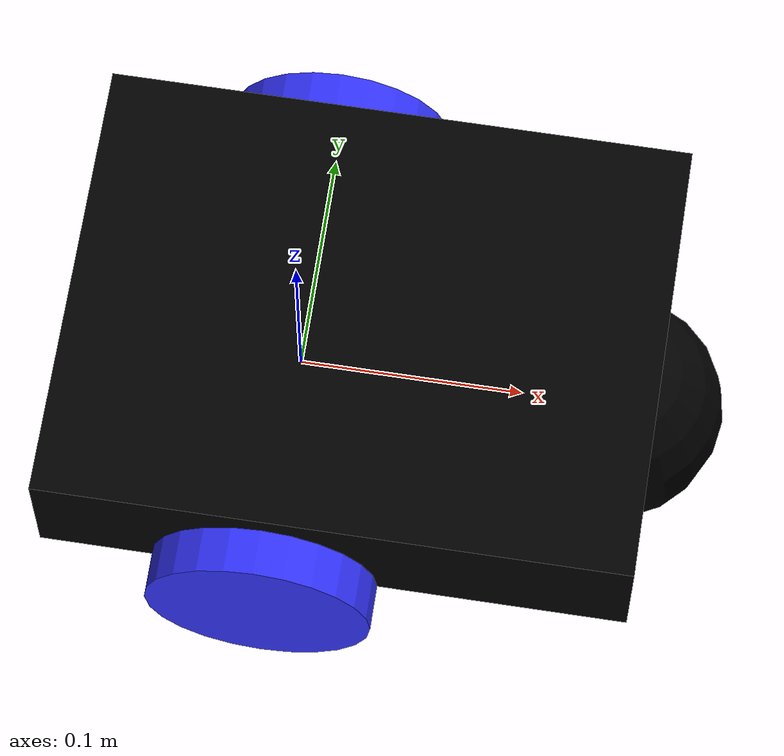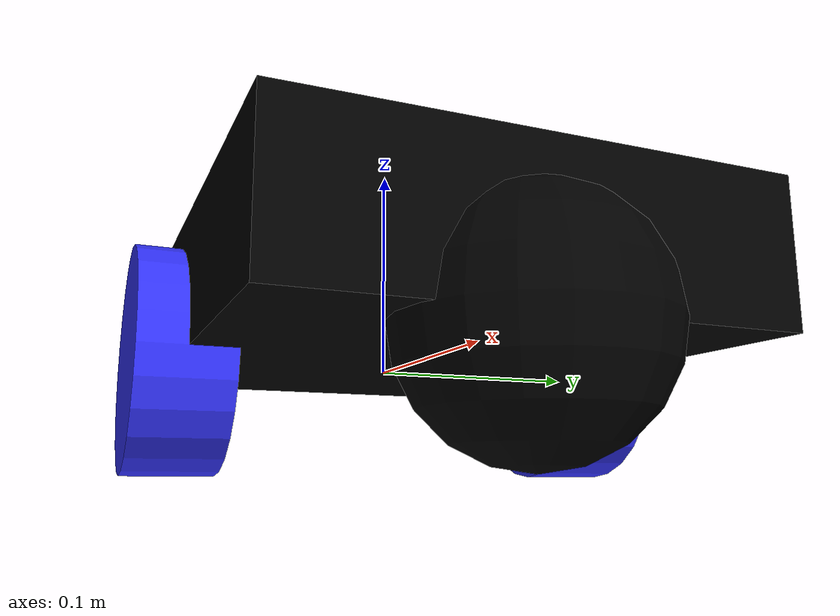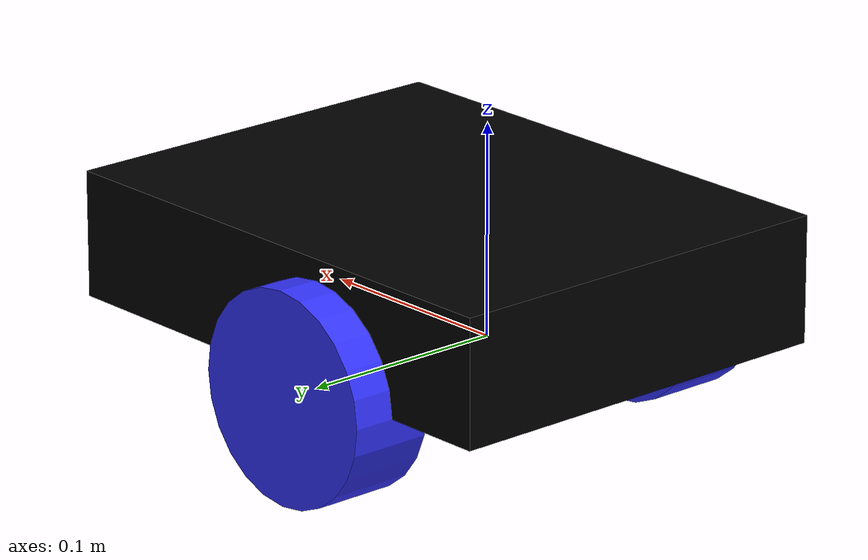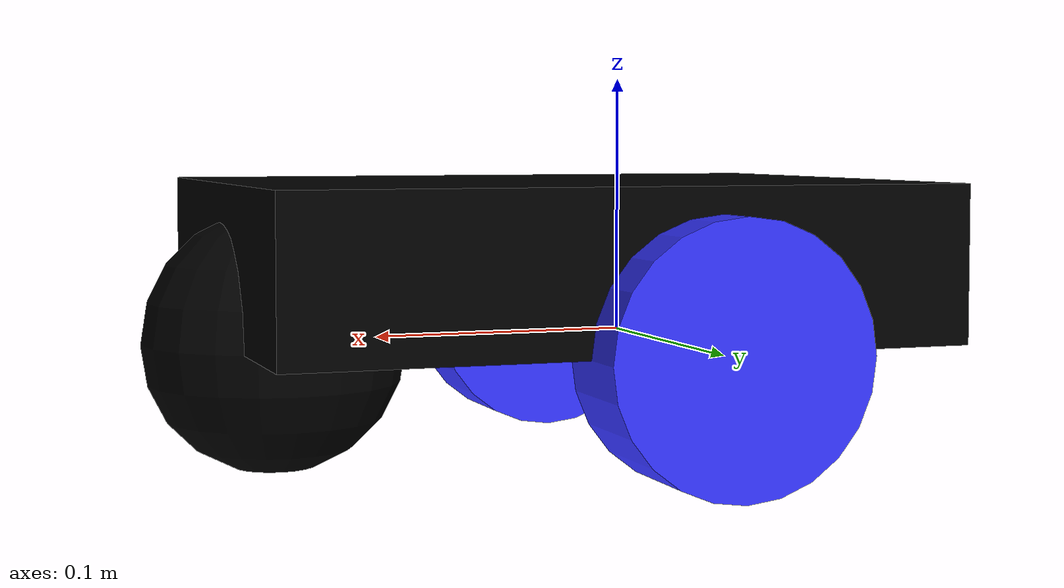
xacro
<?xml version="1.0"?>
<robot xmlns:xacro="http://www.ros.org/wiki/xacro">

    <xacro:include filename="inertial_macros.xacro"/>

    <material name="white">
        <color rgba="1 1 1 1"/>
    </material>

    <material name="orange">
        <color rgba="1 0.3 0.1 1" />
    </material>

    <material name="blue">
        <color rgba="0.2 0.2 1 1" />
    </material>

    <material name="black">
        <color rgba="0 0 0 1" />
    </material>

    <material name="red">
        <color rgba="1 0 0 1"/>
    </material>

    <!-- BASE LINK -->

    <link name="base_link">

    </link>

    <!-- BASE_FOOTPRINT LINK -->

    <joint name="base_footprint_joint" type="fixed">
        <parent link="base_link"/>
        <child link="base_footprint"/>
        <origin xyz="0 0 0" rpy="0 0 0"/>
    </joint>

    <link name="base_footprint">
    </link>

    <!-- CHASSIS LINK -->

    <joint name="chassis_joint" type="fixed">
        <parent link="base_link" />
        <child link="chassis"/>
        <origin xyz="-0.1 0 0"/>
    </joint>

    <link name="chassis">
        <visual>
            <origin xyz="0.13 0 0.03"/>
            <geometry>
                <box size="0.26 0.2 0.06"/>
            </geometry>
            <material name="black"/>
        </visual>
        <collision>
            <origin xyz="0.13 0 0.03"/>
            <geometry>
                <box size="0.26 0.2 0.06"/>
            </geometry>
        </collision>
        <xacro:inertial_box mass="0.5" x="0.26" y="0.2" z="0.06">
            <origin xyz="0.13 0 0.03" rpy="0 0 0 "/>
        </xacro:inertial_box>
    </link>

    <!-- LEFT WHEEL LINK-->
    <joint name="left_wheel_joint" type="continuous">
        <parent link="base_link" />
        <child link="left_wheel"/>
        <origin xyz="0 0.1 0" rpy="-${pi/2} 0 0"/>
        <axis xyz="0 0 1"/>
    </joint>

    <link name="left_wheel">
        <visual>
            <geometry>
                <cylinder radius="0.05" length="0.04"/>
            </geometry>
            <material name="blue"/>
        </visual>
        <collision>
            <geometry>
                <cylinder radius="0.05" length="0.04"/>
            </geometry>
        </collision>
        <xacro:inertial_cylinder mass="0.1" length="0.04" radius="0.05">
            <origin xyz="0 0 0" rpy="0 0 0"/>
        </xacro:inertial_cylinder>
    </link>

    <!-- RIGHT WHEEL LINK-->
    <joint name="right_wheel_joint" type="continuous">
        <parent link="base_link" />
        <child link="right_wheel"/>
        <origin xyz="0 -0.1 0" rpy="${pi/2} 0 0"/>
        <axis xyz="0 0 -1"/>
    </joint>

    <link name="right_wheel">
        <visual>
            <geometry>
                <cylinder radius="0.05" length="0.04"/>
            </geometry>
            <material name="blue"/>
        </visual>
        <collision>
            <geometry>
                <cylinder radius="0.05" length="0.04"/>
            </geometry>
        </collision>
        <xacro:inertial_cylinder mass="0.1" length="0.04" radius="0.05">
            <origin xyz="0 0 0" rpy="0 0 0"/>
        </xacro:inertial_cylinder>
    </link>

    <!-- FRONT WHEEL LINK-->

    <joint name="front_wheel_joint" type="fixed">
        <parent link="chassis"/>
        <child link="front_wheel"/>
        <origin xyz="0.24 0 0"/>
    </joint>

    <link name="front_wheel">
        <visual>
            <geometry>
                <sphere radius="0.05"/>
            </geometry>
            <material name="black"/>
        </visual>
        <collision>
            <geometry>
                <sphere radius="0.05"/>
            </geometry>
        </collision>
        <xacro:inertial_sphere mass="0.1" radius="0.05">
            <origin xyz="0 0 0" rpy="0 0 0"/>
        </xacro:inertial_sphere>
    </link>
</robot>
